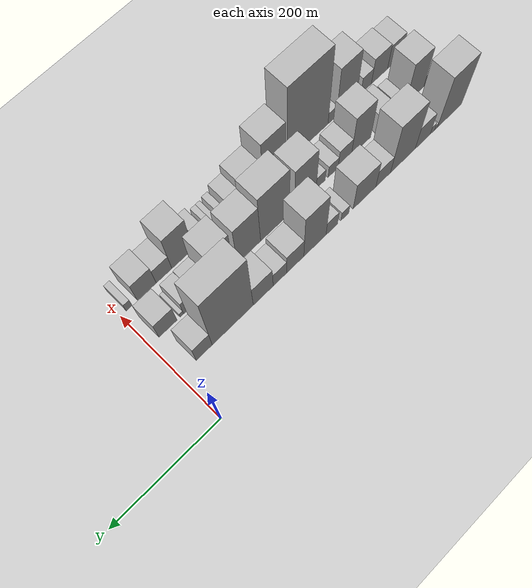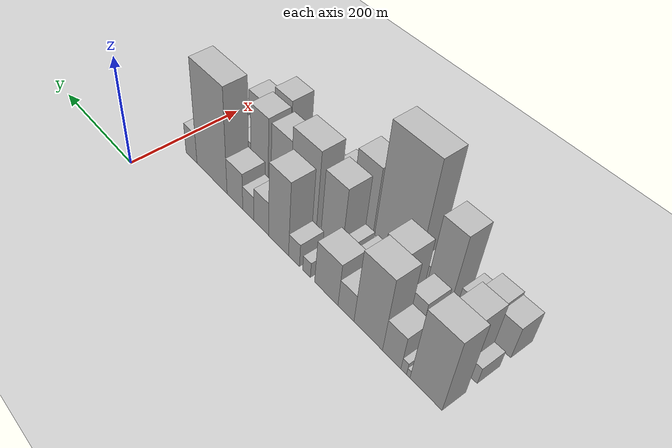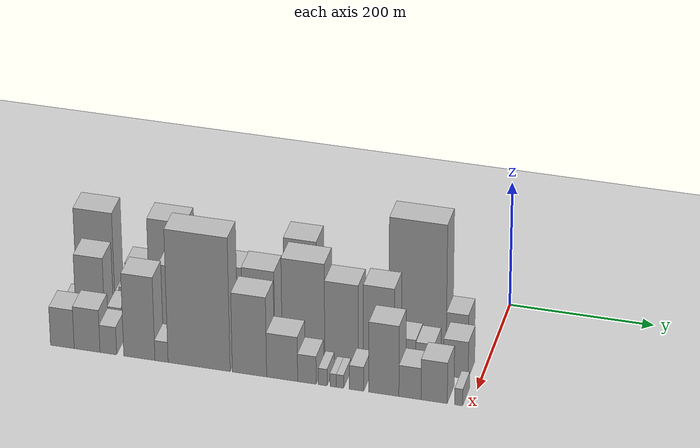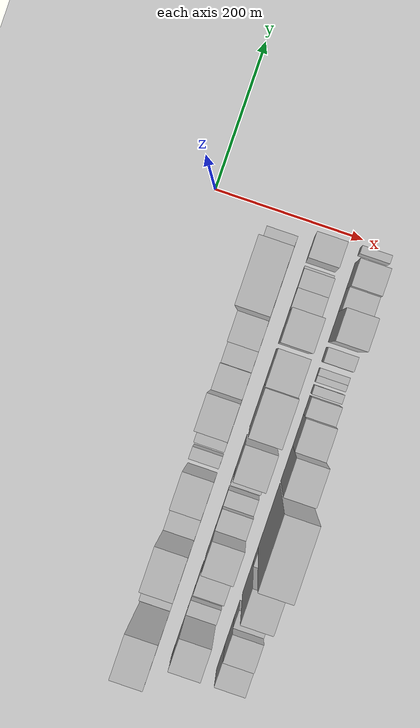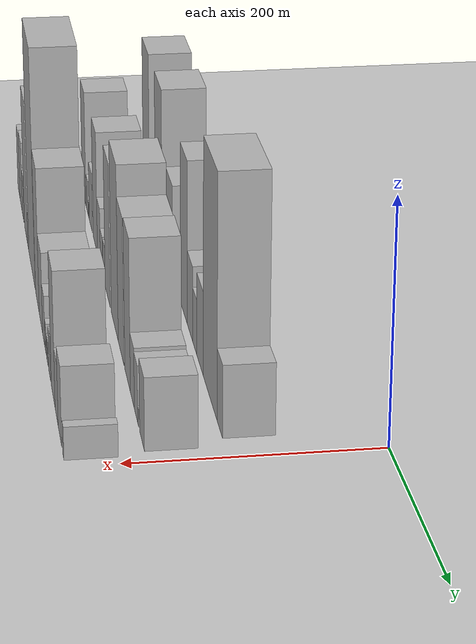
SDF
<sdf version="1.6">
 <world name="default">
  <include><name>ground_plane_1</name><uri>model://HANNAS_ground_plane</uri></include>
  <model name="building_1">
   <static>1</static>
   <pose>100.0000 -552.7777 0 0.000000 0.000000 0.000000</pose>
   <link name="link">
    <pose>0 0 72.00 0 0 0</pose>
    <collision name="collision"><geometry><box><size>40.0000 54.4447 144.0000</size></box></geometry></collision>
    <visual name="visual">
     <cast_shadows>0</cast_shadows>
     <geometry><box><size>40.0000 54.4447 144.0000</size></box></geometry>
     <material>
      <script>
       <uri>model://HANNAS_wall/materials/scripts</uri>
       <uri>model://HANNAS_wall/materials/textures</uri>
       <name>vrc/HANNAS_wall</name>
      </script>
     </material>
    </visual>
   </link>
  </model>
  <model name="building_2">
   <static>1</static>
   <pose>100.0000 -522.5342 0 0.000000 0.000000 0.000000</pose>
   <link name="link">
    <pose>0 0 7.50 0 0 0</pose>
    <collision name="collision"><geometry><box><size>40.0000 6.0421 15.0000</size></box></geometry></collision>
    <visual name="visual">
     <cast_shadows>0</cast_shadows>
     <geometry><box><size>40.0000 6.0421 15.0000</size></box></geometry>
     <material>
      <script>
       <uri>model://HANNAS_wall/materials/scripts</uri>
       <uri>model://HANNAS_wall/materials/textures</uri>
       <name>vrc/HANNAS_wall</name>
      </script>
     </material>
    </visual>
   </link>
  </model>
  <model name="building_3">
   <static>1</static>
   <pose>100.0000 -514.5282 0 0.000000 0.000000 0.000000</pose>
   <link name="link">
    <pose>0 0 12.00 0 0 0</pose>
    <collision name="collision"><geometry><box><size>40.0000 9.9699 24.0000</size></box></geometry></collision>
    <visual name="visual">
     <cast_shadows>0</cast_shadows>
     <geometry><box><size>40.0000 9.9699 24.0000</size></box></geometry>
     <material>
      <script>
       <uri>model://HANNAS_wall/materials/scripts</uri>
       <uri>model://HANNAS_wall/materials/textures</uri>
       <name>vrc/HANNAS_wall</name>
      </script>
     </material>
    </visual>
   </link>
  </model>
  <model name="building_4">
   <static>1</static>
   <pose>100.0000 -492.9412 0 0.000000 0.000000 0.000000</pose>
   <link name="link">
    <pose>0 0 33.00 0 0 0</pose>
    <collision name="collision"><geometry><box><size>40.0000 33.2043 66.0000</size></box></geometry></collision>
    <visual name="visual">
     <cast_shadows>0</cast_shadows>
     <geometry><box><size>40.0000 33.2043 66.0000</size></box></geometry>
     <material>
      <script>
       <uri>model://HANNAS_wall/materials/scripts</uri>
       <uri>model://HANNAS_wall/materials/textures</uri>
       <name>vrc/HANNAS_wall</name>
      </script>
     </material>
    </visual>
   </link>
  </model>
  <model name="building_5">
   <static>1</static>
   <pose>100.0000 -449.3340 0 0.000000 0.000000 0.000000</pose>
   <link name="link">
    <pose>0 0 72.00 0 0 0</pose>
    <collision name="collision"><geometry><box><size>40.0000 54.0100 144.0000</size></box></geometry></collision>
    <visual name="visual">
     <cast_shadows>0</cast_shadows>
     <geometry><box><size>40.0000 54.0100 144.0000</size></box></geometry>
     <material>
      <script>
       <uri>model://HANNAS_wall/materials/scripts</uri>
       <uri>model://HANNAS_wall/materials/textures</uri>
       <name>vrc/HANNAS_wall</name>
      </script>
     </material>
    </visual>
   </link>
  </model>
  <model name="building_6">
   <static>1</static>
   <pose>100.0000 -406.5440 0 0.000000 0.000000 0.000000</pose>
   <link name="link">
    <pose>0 0 27.00 0 0 0</pose>
    <collision name="collision"><geometry><box><size>40.0000 31.5700 54.0000</size></box></geometry></collision>
    <visual name="visual">
     <cast_shadows>0</cast_shadows>
     <geometry><box><size>40.0000 31.5700 54.0000</size></box></geometry>
     <material>
      <script>
       <uri>model://HANNAS_wall/materials/scripts</uri>
       <uri>model://HANNAS_wall/materials/textures</uri>
       <name>vrc/HANNAS_wall</name>
      </script>
     </material>
    </visual>
   </link>
  </model>
  <model name="building_7">
   <static>1</static>
   <pose>100.0000 -366.7398 0 0.000000 0.000000 0.000000</pose>
   <link name="link">
    <pose>0 0 42.00 0 0 0</pose>
    <collision name="collision"><geometry><box><size>40.0000 48.0384 84.0000</size></box></geometry></collision>
    <visual name="visual">
     <cast_shadows>0</cast_shadows>
     <geometry><box><size>40.0000 48.0384 84.0000</size></box></geometry>
     <material>
      <script>
       <uri>model://HANNAS_wall/materials/scripts</uri>
       <uri>model://HANNAS_wall/materials/textures</uri>
       <name>vrc/HANNAS_wall</name>
      </script>
     </material>
    </visual>
   </link>
  </model>
  <model name="building_8">
   <static>1</static>
   <pose>100.0000 -325.4975 0 0.000000 0.000000 0.000000</pose>
   <link name="link">
    <pose>0 0 15.00 0 0 0</pose>
    <collision name="collision"><geometry><box><size>40.0000 16.4462 30.0000</size></box></geometry></collision>
    <visual name="visual">
     <cast_shadows>0</cast_shadows>
     <geometry><box><size>40.0000 16.4462 30.0000</size></box></geometry>
     <material>
      <script>
       <uri>model://HANNAS_wall/materials/scripts</uri>
       <uri>model://HANNAS_wall/materials/textures</uri>
       <name>vrc/HANNAS_wall</name>
      </script>
     </material>
    </visual>
   </link>
  </model>
  <model name="building_9">
   <static>1</static>
   <pose>100.0000 -298.2725 0 0.000000 0.000000 0.000000</pose>
   <link name="link">
    <pose>0 0 22.50 0 0 0</pose>
    <collision name="collision"><geometry><box><size>40.0000 24.0039 45.0000</size></box></geometry></collision>
    <visual name="visual">
     <cast_shadows>0</cast_shadows>
     <geometry><box><size>40.0000 24.0039 45.0000</size></box></geometry>
     <material>
      <script>
       <uri>model://HANNAS_wall/materials/scripts</uri>
       <uri>model://HANNAS_wall/materials/textures</uri>
       <name>vrc/HANNAS_wall</name>
      </script>
     </material>
    </visual>
   </link>
  </model>
  <model name="building_10">
   <static>1</static>
   <pose>100.0000 -263.5627 0 0.000000 0.000000 0.000000</pose>
   <link name="link">
    <pose>0 0 72.00 0 0 0</pose>
    <collision name="collision"><geometry><box><size>40.0000 45.4156 144.0000</size></box></geometry></collision>
    <visual name="visual">
     <cast_shadows>0</cast_shadows>
     <geometry><box><size>40.0000 45.4156 144.0000</size></box></geometry>
     <material>
      <script>
       <uri>model://HANNAS_wall/materials/scripts</uri>
       <uri>model://HANNAS_wall/materials/textures</uri>
       <name>vrc/HANNAS_wall</name>
      </script>
     </material>
    </visual>
   </link>
  </model>
  <model name="building_11">
   <static>1</static>
   <pose>100.0000 -223.7053 0 0.000000 0.000000 0.000000</pose>
   <link name="link">
    <pose>0 0 33.00 0 0 0</pose>
    <collision name="collision"><geometry><box><size>40.0000 34.2993 66.0000</size></box></geometry></collision>
    <visual name="visual">
     <cast_shadows>0</cast_shadows>
     <geometry><box><size>40.0000 34.2993 66.0000</size></box></geometry>
     <material>
      <script>
       <uri>model://HANNAS_wall/materials/scripts</uri>
       <uri>model://HANNAS_wall/materials/textures</uri>
       <name>vrc/HANNAS_wall</name>
      </script>
     </material>
    </visual>
   </link>
  </model>
  <model name="building_12">
   <static>1</static>
   <pose>100.0000 -193.0056 0 0.000000 0.000000 0.000000</pose>
   <link name="link">
    <pose>0 0 24.00 0 0 0</pose>
    <collision name="collision"><geometry><box><size>40.0000 27.1000 48.0000</size></box></geometry></collision>
    <visual name="visual">
     <cast_shadows>0</cast_shadows>
     <geometry><box><size>40.0000 27.1000 48.0000</size></box></geometry>
     <material>
      <script>
       <uri>model://HANNAS_wall/materials/scripts</uri>
       <uri>model://HANNAS_wall/materials/textures</uri>
       <name>vrc/HANNAS_wall</name>
      </script>
     </material>
    </visual>
   </link>
  </model>
  <model name="building_13">
   <static>1</static>
   <pose>100.0000 -159.8613 0 0.000000 0.000000 0.000000</pose>
   <link name="link">
    <pose>0 0 36.00 0 0 0</pose>
    <collision name="collision"><geometry><box><size>40.0000 39.1886 72.0000</size></box></geometry></collision>
    <visual name="visual">
     <cast_shadows>0</cast_shadows>
     <geometry><box><size>40.0000 39.1886 72.0000</size></box></geometry>
     <material>
      <script>
       <uri>model://HANNAS_wall/materials/scripts</uri>
       <uri>model://HANNAS_wall/materials/textures</uri>
       <name>vrc/HANNAS_wall</name>
      </script>
     </material>
    </visual>
   </link>
  </model>
  <model name="building_14">
   <static>1</static>
   <pose>100.0000 -100.7427 0 0.000000 0.000000 0.000000</pose>
   <link name="link">
    <pose>0 0 100.50 0 0 0</pose>
    <collision name="collision"><geometry><box><size>40.0000 79.0486 201.0000</size></box></geometry></collision>
    <visual name="visual">
     <cast_shadows>0</cast_shadows>
     <geometry><box><size>40.0000 79.0486 201.0000</size></box></geometry>
     <material>
      <script>
       <uri>model://HANNAS_wall/materials/scripts</uri>
       <uri>model://HANNAS_wall/materials/textures</uri>
       <name>vrc/HANNAS_wall</name>
      </script>
     </material>
    </visual>
   </link>
  </model>
  <model name="building_15">
   <static>1</static>
   <pose>100.0000 -46.0944 0 0.000000 0.000000 0.000000</pose>
   <link name="link">
    <pose>0 0 30.00 0 0 0</pose>
    <collision name="collision"><geometry><box><size>40.0000 30.2478 60.0000</size></box></geometry></collision>
    <visual name="visual">
     <cast_shadows>0</cast_shadows>
     <geometry><box><size>40.0000 30.2478 60.0000</size></box></geometry>
     <material>
      <script>
       <uri>model://HANNAS_wall/materials/scripts</uri>
       <uri>model://HANNAS_wall/materials/textures</uri>
       <name>vrc/HANNAS_wall</name>
      </script>
     </material>
    </visual>
   </link>
  </model>
  <model name="building_32">
   <static>1</static>
   <pose>160.0000 -571.1859 0 0.000000 0.000000 0.000000</pose>
   <link name="link">
    <pose>0 0 16.50 0 0 0</pose>
    <collision name="collision"><geometry><box><size>40.0000 17.6282 33.0000</size></box></geometry></collision>
    <visual name="visual">
     <cast_shadows>0</cast_shadows>
     <geometry><box><size>40.0000 17.6282 33.0000</size></box></geometry>
     <material>
      <script>
       <uri>model://HANNAS_wall/materials/scripts</uri>
       <uri>model://HANNAS_wall/materials/textures</uri>
       <name>vrc/HANNAS_wall</name>
      </script>
     </material>
    </visual>
   </link>
  </model>
  <model name="building_33">
   <static>1</static>
   <pose>160.0000 -542.0684 0 0.000000 0.000000 0.000000</pose>
   <link name="link">
    <pose>0 0 55.50 0 0 0</pose>
    <collision name="collision"><geometry><box><size>40.0000 40.6069 111.0000</size></box></geometry></collision>
    <visual name="visual">
     <cast_shadows>0</cast_shadows>
     <geometry><box><size>40.0000 40.6069 111.0000</size></box></geometry>
     <material>
      <script>
       <uri>model://HANNAS_wall/materials/scripts</uri>
       <uri>model://HANNAS_wall/materials/textures</uri>
       <name>vrc/HANNAS_wall</name>
      </script>
     </material>
    </visual>
   </link>
  </model>
  <model name="building_34">
   <static>1</static>
   <pose>160.0000 -507.9775 0 0.000000 0.000000 0.000000</pose>
   <link name="link">
    <pose>0 0 16.50 0 0 0</pose>
    <collision name="collision"><geometry><box><size>40.0000 19.5749 33.0000</size></box></geometry></collision>
    <visual name="visual">
     <cast_shadows>0</cast_shadows>
     <geometry><box><size>40.0000 19.5749 33.0000</size></box></geometry>
     <material>
      <script>
       <uri>model://HANNAS_wall/materials/scripts</uri>
       <uri>model://HANNAS_wall/materials/textures</uri>
       <name>vrc/HANNAS_wall</name>
      </script>
     </material>
    </visual>
   </link>
  </model>
  <model name="building_35">
   <static>1</static>
   <pose>160.0000 -494.9289 0 0.000000 0.000000 0.000000</pose>
   <link name="link">
    <pose>0 0 7.50 0 0 0</pose>
    <collision name="collision"><geometry><box><size>40.0000 6.5223 15.0000</size></box></geometry></collision>
    <visual name="visual">
     <cast_shadows>0</cast_shadows>
     <geometry><box><size>40.0000 6.5223 15.0000</size></box></geometry>
     <material>
      <script>
       <uri>model://HANNAS_wall/materials/scripts</uri>
       <uri>model://HANNAS_wall/materials/textures</uri>
       <name>vrc/HANNAS_wall</name>
      </script>
     </material>
    </visual>
   </link>
  </model>
  <model name="building_36">
   <static>1</static>
   <pose>160.0000 -488.4182 0 0.000000 0.000000 0.000000</pose>
   <link name="link">
    <pose>0 0 7.50 0 0 0</pose>
    <collision name="collision"><geometry><box><size>40.0000 6.4991 15.0000</size></box></geometry></collision>
    <visual name="visual">
     <cast_shadows>0</cast_shadows>
     <geometry><box><size>40.0000 6.4991 15.0000</size></box></geometry>
     <material>
      <script>
       <uri>model://HANNAS_wall/materials/scripts</uri>
       <uri>model://HANNAS_wall/materials/textures</uri>
       <name>vrc/HANNAS_wall</name>
      </script>
     </material>
    </visual>
   </link>
  </model>
  <model name="building_37">
   <static>1</static>
   <pose>160.0000 -469.7901 0 0.000000 0.000000 0.000000</pose>
   <link name="link">
    <pose>0 0 28.50 0 0 0</pose>
    <collision name="collision"><geometry><box><size>40.0000 30.7570 57.0000</size></box></geometry></collision>
    <visual name="visual">
     <cast_shadows>0</cast_shadows>
     <geometry><box><size>40.0000 30.7570 57.0000</size></box></geometry>
     <material>
      <script>
       <uri>model://HANNAS_wall/materials/scripts</uri>
       <uri>model://HANNAS_wall/materials/textures</uri>
       <name>vrc/HANNAS_wall</name>
      </script>
     </material>
    </visual>
   </link>
  </model>
  <model name="building_38">
   <static>1</static>
   <pose>160.0000 -423.5480 0 0.000000 0.000000 0.000000</pose>
   <link name="link">
    <pose>0 0 57.00 0 0 0</pose>
    <collision name="collision"><geometry><box><size>40.0000 41.7272 114.0000</size></box></geometry></collision>
    <visual name="visual">
     <cast_shadows>0</cast_shadows>
     <geometry><box><size>40.0000 41.7272 114.0000</size></box></geometry>
     <material>
      <script>
       <uri>model://HANNAS_wall/materials/scripts</uri>
       <uri>model://HANNAS_wall/materials/textures</uri>
       <name>vrc/HANNAS_wall</name>
      </script>
     </material>
    </visual>
   </link>
  </model>
  <model name="building_39">
   <static>1</static>
   <pose>160.0000 -388.5249 0 0.000000 0.000000 0.000000</pose>
   <link name="link">
    <pose>0 0 27.00 0 0 0</pose>
    <collision name="collision"><geometry><box><size>40.0000 28.3191 54.0000</size></box></geometry></collision>
    <visual name="visual">
     <cast_shadows>0</cast_shadows>
     <geometry><box><size>40.0000 28.3191 54.0000</size></box></geometry>
     <material>
      <script>
       <uri>model://HANNAS_wall/materials/scripts</uri>
       <uri>model://HANNAS_wall/materials/textures</uri>
       <name>vrc/HANNAS_wall</name>
      </script>
     </material>
    </visual>
   </link>
  </model>
  <model name="building_40">
   <static>1</static>
   <pose>160.0000 -363.7777 0 0.000000 0.000000 0.000000</pose>
   <link name="link">
    <pose>0 0 18.00 0 0 0</pose>
    <collision name="collision"><geometry><box><size>40.0000 21.1754 36.0000</size></box></geometry></collision>
    <visual name="visual">
     <cast_shadows>0</cast_shadows>
     <geometry><box><size>40.0000 21.1754 36.0000</size></box></geometry>
     <material>
      <script>
       <uri>model://HANNAS_wall/materials/scripts</uri>
       <uri>model://HANNAS_wall/materials/textures</uri>
       <name>vrc/HANNAS_wall</name>
      </script>
     </material>
    </visual>
   </link>
  </model>
  <model name="building_41">
   <static>1</static>
   <pose>160.0000 -337.8332 0 0.000000 0.000000 0.000000</pose>
   <link name="link">
    <pose>0 0 18.00 0 0 0</pose>
    <collision name="collision"><geometry><box><size>40.0000 18.7137 36.0000</size></box></geometry></collision>
    <visual name="visual">
     <cast_shadows>0</cast_shadows>
     <geometry><box><size>40.0000 18.7137 36.0000</size></box></geometry>
     <material>
      <script>
       <uri>model://HANNAS_wall/materials/scripts</uri>
       <uri>model://HANNAS_wall/materials/textures</uri>
       <name>vrc/HANNAS_wall</name>
      </script>
     </material>
    </visual>
   </link>
  </model>
  <model name="building_42">
   <static>1</static>
   <pose>160.0000 -305.9651 0 0.000000 0.000000 0.000000</pose>
   <link name="link">
    <pose>0 0 64.50 0 0 0</pose>
    <collision name="collision"><geometry><box><size>40.0000 45.0224 129.0000</size></box></geometry></collision>
    <visual name="visual">
     <cast_shadows>0</cast_shadows>
     <geometry><box><size>40.0000 45.0224 129.0000</size></box></geometry>
     <material>
      <script>
       <uri>model://HANNAS_wall/materials/scripts</uri>
       <uri>model://HANNAS_wall/materials/textures</uri>
       <name>vrc/HANNAS_wall</name>
      </script>
     </material>
    </visual>
   </link>
  </model>
  <model name="building_43">
   <static>1</static>
   <pose>160.0000 -243.8816 0 0.000000 0.000000 0.000000</pose>
   <link name="link">
    <pose>0 0 76.50 0 0 0</pose>
    <collision name="collision"><geometry><box><size>40.0000 59.1446 153.0000</size></box></geometry></collision>
    <visual name="visual">
     <cast_shadows>0</cast_shadows>
     <geometry><box><size>40.0000 59.1446 153.0000</size></box></geometry>
     <material>
      <script>
       <uri>model://HANNAS_wall/materials/scripts</uri>
       <uri>model://HANNAS_wall/materials/textures</uri>
       <name>vrc/HANNAS_wall</name>
      </script>
     </material>
    </visual>
   </link>
  </model>
  <model name="building_44">
   <static>1</static>
   <pose>160.0000 -191.1448 0 0.000000 0.000000 0.000000</pose>
   <link name="link">
    <pose>0 0 63.00 0 0 0</pose>
    <collision name="collision"><geometry><box><size>40.0000 46.3291 126.0000</size></box></geometry></collision>
    <visual name="visual">
     <cast_shadows>0</cast_shadows>
     <geometry><box><size>40.0000 46.3291 126.0000</size></box></geometry>
     <material>
      <script>
       <uri>model://HANNAS_wall/materials/scripts</uri>
       <uri>model://HANNAS_wall/materials/textures</uri>
       <name>vrc/HANNAS_wall</name>
      </script>
     </material>
    </visual>
   </link>
  </model>
  <model name="building_45">
   <static>1</static>
   <pose>160.0000 -139.6837 0 0.000000 0.000000 0.000000</pose>
   <link name="link">
    <pose>0 0 64.50 0 0 0</pose>
    <collision name="collision"><geometry><box><size>40.0000 42.5931 129.0000</size></box></geometry></collision>
    <visual name="visual">
     <cast_shadows>0</cast_shadows>
     <geometry><box><size>40.0000 42.5931 129.0000</size></box></geometry>
     <material>
      <script>
       <uri>model://HANNAS_wall/materials/scripts</uri>
       <uri>model://HANNAS_wall/materials/textures</uri>
       <name>vrc/HANNAS_wall</name>
      </script>
     </material>
    </visual>
   </link>
  </model>
  <model name="building_46">
   <static>1</static>
   <pose>160.0000 -103.6896 0 0.000000 0.000000 0.000000</pose>
   <link name="link">
    <pose>0 0 25.50 0 0 0</pose>
    <collision name="collision"><geometry><box><size>40.0000 29.3951 51.0000</size></box></geometry></collision>
    <visual name="visual">
     <cast_shadows>0</cast_shadows>
     <geometry><box><size>40.0000 29.3951 51.0000</size></box></geometry>
     <material>
      <script>
       <uri>model://HANNAS_wall/materials/scripts</uri>
       <uri>model://HANNAS_wall/materials/textures</uri>
       <name>vrc/HANNAS_wall</name>
      </script>
     </material>
    </visual>
   </link>
  </model>
  <model name="building_47">
   <static>1</static>
   <pose>160.0000 -76.3630 0 0.000000 0.000000 0.000000</pose>
   <link name="link">
    <pose>0 0 24.00 0 0 0</pose>
    <collision name="collision"><geometry><box><size>40.0000 25.2581 48.0000</size></box></geometry></collision>
    <visual name="visual">
     <cast_shadows>0</cast_shadows>
     <geometry><box><size>40.0000 25.2581 48.0000</size></box></geometry>
     <material>
      <script>
       <uri>model://HANNAS_wall/materials/scripts</uri>
       <uri>model://HANNAS_wall/materials/textures</uri>
       <name>vrc/HANNAS_wall</name>
      </script>
     </material>
    </visual>
   </link>
  </model>
  <model name="building_48">
   <static>1</static>
   <pose>160.0000 -60.4982 0 0.000000 0.000000 0.000000</pose>
   <link name="link">
    <pose>0 0 7.50 0 0 0</pose>
    <collision name="collision"><geometry><box><size>40.0000 6.4714 15.0000</size></box></geometry></collision>
    <visual name="visual">
     <cast_shadows>0</cast_shadows>
     <geometry><box><size>40.0000 6.4714 15.0000</size></box></geometry>
     <material>
      <script>
       <uri>model://HANNAS_wall/materials/scripts</uri>
       <uri>model://HANNAS_wall/materials/textures</uri>
       <name>vrc/HANNAS_wall</name>
      </script>
     </material>
    </visual>
   </link>
  </model>
  <model name="building_49">
   <static>1</static>
   <pose>160.0000 -34.3023 0 0.000000 0.000000 0.000000</pose>
   <link name="link">
    <pose>0 0 30.00 0 0 0</pose>
    <collision name="collision"><geometry><box><size>40.0000 33.9204 60.0000</size></box></geometry></collision>
    <visual name="visual">
     <cast_shadows>0</cast_shadows>
     <geometry><box><size>40.0000 33.9204 60.0000</size></box></geometry>
     <material>
      <script>
       <uri>model://HANNAS_wall/materials/scripts</uri>
       <uri>model://HANNAS_wall/materials/textures</uri>
       <name>vrc/HANNAS_wall</name>
      </script>
     </material>
    </visual>
   </link>
  </model>
  <model name="building_67">
   <static>1</static>
   <pose>220.0000 -563.3770 0 0.000000 0.000000 0.000000</pose>
   <link name="link">
    <pose>0 0 31.50 0 0 0</pose>
    <collision name="collision"><geometry><box><size>40.0000 33.2461 63.0000</size></box></geometry></collision>
    <visual name="visual">
     <cast_shadows>0</cast_shadows>
     <geometry><box><size>40.0000 33.2461 63.0000</size></box></geometry>
     <material>
      <script>
       <uri>model://HANNAS_wall/materials/scripts</uri>
       <uri>model://HANNAS_wall/materials/textures</uri>
       <name>vrc/HANNAS_wall</name>
      </script>
     </material>
    </visual>
   </link>
  </model>
  <model name="building_68">
   <static>1</static>
   <pose>220.0000 -528.6495 0 0.000000 0.000000 0.000000</pose>
   <link name="link">
    <pose>0 0 34.50 0 0 0</pose>
    <collision name="collision"><geometry><box><size>40.0000 36.2088 69.0000</size></box></geometry></collision>
    <visual name="visual">
     <cast_shadows>0</cast_shadows>
     <geometry><box><size>40.0000 36.2088 69.0000</size></box></geometry>
     <material>
      <script>
       <uri>model://HANNAS_wall/materials/scripts</uri>
       <uri>model://HANNAS_wall/materials/textures</uri>
       <name>vrc/HANNAS_wall</name>
      </script>
     </material>
    </visual>
   </link>
  </model>
  <model name="building_69">
   <static>1</static>
   <pose>220.0000 -498.9059 0 0.000000 0.000000 0.000000</pose>
   <link name="link">
    <pose>0 0 22.50 0 0 0</pose>
    <collision name="collision"><geometry><box><size>40.0000 23.2784 45.0000</size></box></geometry></collision>
    <visual name="visual">
     <cast_shadows>0</cast_shadows>
     <geometry><box><size>40.0000 23.2784 45.0000</size></box></geometry>
     <material>
      <script>
       <uri>model://HANNAS_wall/materials/scripts</uri>
       <uri>model://HANNAS_wall/materials/textures</uri>
       <name>vrc/HANNAS_wall</name>
      </script>
     </material>
    </visual>
   </link>
  </model>
  <model name="building_70">
   <static>1</static>
   <pose>220.0000 -455.5270 0 0.000000 0.000000 0.000000</pose>
   <link name="link">
    <pose>0 0 67.50 0 0 0</pose>
    <collision name="collision"><geometry><box><size>40.0000 43.4795 135.0000</size></box></geometry></collision>
    <visual name="visual">
     <cast_shadows>0</cast_shadows>
     <geometry><box><size>40.0000 43.4795 135.0000</size></box></geometry>
     <material>
      <script>
       <uri>model://HANNAS_wall/materials/scripts</uri>
       <uri>model://HANNAS_wall/materials/textures</uri>
       <name>vrc/HANNAS_wall</name>
      </script>
     </material>
    </visual>
   </link>
  </model>
  <model name="building_71">
   <static>1</static>
   <pose>220.0000 -424.6534 0 0.000000 0.000000 0.000000</pose>
   <link name="link">
    <pose>0 0 16.50 0 0 0</pose>
    <collision name="collision"><geometry><box><size>40.0000 18.2677 33.0000</size></box></geometry></collision>
    <visual name="visual">
     <cast_shadows>0</cast_shadows>
     <geometry><box><size>40.0000 18.2677 33.0000</size></box></geometry>
     <material>
      <script>
       <uri>model://HANNAS_wall/materials/scripts</uri>
       <uri>model://HANNAS_wall/materials/textures</uri>
       <name>vrc/HANNAS_wall</name>
      </script>
     </material>
    </visual>
   </link>
  </model>
  <model name="building_72">
   <static>1</static>
   <pose>220.0000 -372.4253 0 0.000000 0.000000 0.000000</pose>
   <link name="link">
    <pose>0 0 108.00 0 0 0</pose>
    <collision name="collision"><geometry><box><size>40.0000 86.1884 216.0000</size></box></geometry></collision>
    <visual name="visual">
     <cast_shadows>0</cast_shadows>
     <geometry><box><size>40.0000 86.1884 216.0000</size></box></geometry>
     <material>
      <script>
       <uri>model://HANNAS_wall/materials/scripts</uri>
       <uri>model://HANNAS_wall/materials/textures</uri>
       <name>vrc/HANNAS_wall</name>
      </script>
     </material>
    </visual>
   </link>
  </model>
  <model name="building_73">
   <static>1</static>
   <pose>220.0000 -302.6240 0 0.000000 0.000000 0.000000</pose>
   <link name="link">
    <pose>0 0 64.50 0 0 0</pose>
    <collision name="collision"><geometry><box><size>40.0000 47.4142 129.0000</size></box></geometry></collision>
    <visual name="visual">
     <cast_shadows>0</cast_shadows>
     <geometry><box><size>40.0000 47.4142 129.0000</size></box></geometry>
     <material>
      <script>
       <uri>model://HANNAS_wall/materials/scripts</uri>
       <uri>model://HANNAS_wall/materials/textures</uri>
       <name>vrc/HANNAS_wall</name>
      </script>
     </material>
    </visual>
   </link>
  </model>
  <model name="building_74">
   <static>1</static>
   <pose>220.0000 -257.5747 0 0.000000 0.000000 0.000000</pose>
   <link name="link">
    <pose>0 0 36.00 0 0 0</pose>
    <collision name="collision"><geometry><box><size>40.0000 42.6844 72.0000</size></box></geometry></collision>
    <visual name="visual">
     <cast_shadows>0</cast_shadows>
     <geometry><box><size>40.0000 42.6844 72.0000</size></box></geometry>
     <material>
      <script>
       <uri>model://HANNAS_wall/materials/scripts</uri>
       <uri>model://HANNAS_wall/materials/textures</uri>
       <name>vrc/HANNAS_wall</name>
      </script>
     </material>
    </visual>
   </link>
  </model>
  <model name="building_75">
   <static>1</static>
   <pose>220.0000 -223.5013 0 0.000000 0.000000 0.000000</pose>
   <link name="link">
    <pose>0 0 22.50 0 0 0</pose>
    <collision name="collision"><geometry><box><size>40.0000 25.4624 45.0000</size></box></geometry></collision>
    <visual name="visual">
     <cast_shadows>0</cast_shadows>
     <geometry><box><size>40.0000 25.4624 45.0000</size></box></geometry>
     <material>
      <script>
       <uri>model://HANNAS_wall/materials/scripts</uri>
       <uri>model://HANNAS_wall/materials/textures</uri>
       <name>vrc/HANNAS_wall</name>
      </script>
     </material>
    </visual>
   </link>
  </model>
  <model name="building_76">
   <static>1</static>
   <pose>220.0000 -201.7799 0 0.000000 0.000000 0.000000</pose>
   <link name="link">
    <pose>0 0 13.50 0 0 0</pose>
    <collision name="collision"><geometry><box><size>40.0000 11.9806 27.0000</size></box></geometry></collision>
    <visual name="visual">
     <cast_shadows>0</cast_shadows>
     <geometry><box><size>40.0000 11.9806 27.0000</size></box></geometry>
     <material>
      <script>
       <uri>model://HANNAS_wall/materials/scripts</uri>
       <uri>model://HANNAS_wall/materials/textures</uri>
       <name>vrc/HANNAS_wall</name>
      </script>
     </material>
    </visual>
   </link>
  </model>
  <model name="building_77">
   <static>1</static>
   <pose>220.0000 -187.4520 0 0.000000 0.000000 0.000000</pose>
   <link name="link">
    <pose>0 0 10.50 0 0 0</pose>
    <collision name="collision"><geometry><box><size>40.0000 8.6752 21.0000</size></box></geometry></collision>
    <visual name="visual">
     <cast_shadows>0</cast_shadows>
     <geometry><box><size>40.0000 8.6752 21.0000</size></box></geometry>
     <material>
      <script>
       <uri>model://HANNAS_wall/materials/scripts</uri>
       <uri>model://HANNAS_wall/materials/textures</uri>
       <name>vrc/HANNAS_wall</name>
      </script>
     </material>
    </visual>
   </link>
  </model>
  <model name="building_78">
   <static>1</static>
   <pose>220.0000 -178.1317 0 0.000000 0.000000 0.000000</pose>
   <link name="link">
    <pose>0 0 10.50 0 0 0</pose>
    <collision name="collision"><geometry><box><size>40.0000 9.9653 21.0000</size></box></geometry></collision>
    <visual name="visual">
     <cast_shadows>0</cast_shadows>
     <geometry><box><size>40.0000 9.9653 21.0000</size></box></geometry>
     <material>
      <script>
       <uri>model://HANNAS_wall/materials/scripts</uri>
       <uri>model://HANNAS_wall/materials/textures</uri>
       <name>vrc/HANNAS_wall</name>
      </script>
     </material>
    </visual>
   </link>
  </model>
  <model name="building_79">
   <static>1</static>
   <pose>220.0000 -155.3626 0 0.000000 0.000000 0.000000</pose>
   <link name="link">
    <pose>0 0 19.50 0 0 0</pose>
    <collision name="collision"><geometry><box><size>40.0000 19.5730 39.0000</size></box></geometry></collision>
    <visual name="visual">
     <cast_shadows>0</cast_shadows>
     <geometry><box><size>40.0000 19.5730 39.0000</size></box></geometry>
     <material>
      <script>
       <uri>model://HANNAS_wall/materials/scripts</uri>
       <uri>model://HANNAS_wall/materials/textures</uri>
       <name>vrc/HANNAS_wall</name>
      </script>
     </material>
    </visual>
   </link>
  </model>
  <model name="building_80">
   <static>1</static>
   <pose>220.0000 -118.0789 0 0.000000 0.000000 0.000000</pose>
   <link name="link">
    <pose>0 0 57.00 0 0 0</pose>
    <collision name="collision"><geometry><box><size>40.0000 40.9942 114.0000</size></box></geometry></collision>
    <visual name="visual">
     <cast_shadows>0</cast_shadows>
     <geometry><box><size>40.0000 40.9942 114.0000</size></box></geometry>
     <material>
      <script>
       <uri>model://HANNAS_wall/materials/scripts</uri>
       <uri>model://HANNAS_wall/materials/textures</uri>
       <name>vrc/HANNAS_wall</name>
      </script>
     </material>
    </visual>
   </link>
  </model>
  <model name="building_81">
   <static>1</static>
   <pose>220.0000 -82.5394 0 0.000000 0.000000 0.000000</pose>
   <link name="link">
    <pose>0 0 25.50 0 0 0</pose>
    <collision name="collision"><geometry><box><size>40.0000 30.0848 51.0000</size></box></geometry></collision>
    <visual name="visual">
     <cast_shadows>0</cast_shadows>
     <geometry><box><size>40.0000 30.0848 51.0000</size></box></geometry>
     <material>
      <script>
       <uri>model://HANNAS_wall/materials/scripts</uri>
       <uri>model://HANNAS_wall/materials/textures</uri>
       <name>vrc/HANNAS_wall</name>
      </script>
     </material>
    </visual>
   </link>
  </model>
  <model name="building_82">
   <static>1</static>
   <pose>220.0000 -49.6937 0 0.000000 0.000000 0.000000</pose>
   <link name="link">
    <pose>0 0 33.00 0 0 0</pose>
    <collision name="collision"><geometry><box><size>40.0000 35.6066 66.0000</size></box></geometry></collision>
    <visual name="visual">
     <cast_shadows>0</cast_shadows>
     <geometry><box><size>40.0000 35.6066 66.0000</size></box></geometry>
     <material>
      <script>
       <uri>model://HANNAS_wall/materials/scripts</uri>
       <uri>model://HANNAS_wall/materials/textures</uri>
       <name>vrc/HANNAS_wall</name>
      </script>
     </material>
    </visual>
   </link>
  </model>
  <model name="building_83">
   <static>1</static>
   <pose>220.0000 -16.3867 0 0.000000 0.000000 0.000000</pose>
   <link name="link">
    <pose>0 0 13.50 0 0 0</pose>
    <collision name="collision"><geometry><box><size>40.0000 11.0074 27.0000</size></box></geometry></collision>
    <visual name="visual">
     <cast_shadows>0</cast_shadows>
     <geometry><box><size>40.0000 11.0074 27.0000</size></box></geometry>
     <material>
      <script>
       <uri>model://HANNAS_wall/materials/scripts</uri>
       <uri>model://HANNAS_wall/materials/textures</uri>
       <name>vrc/HANNAS_wall</name>
      </script>
     </material>
    </visual>
   </link>
  </model>
 </world>
</sdf>
